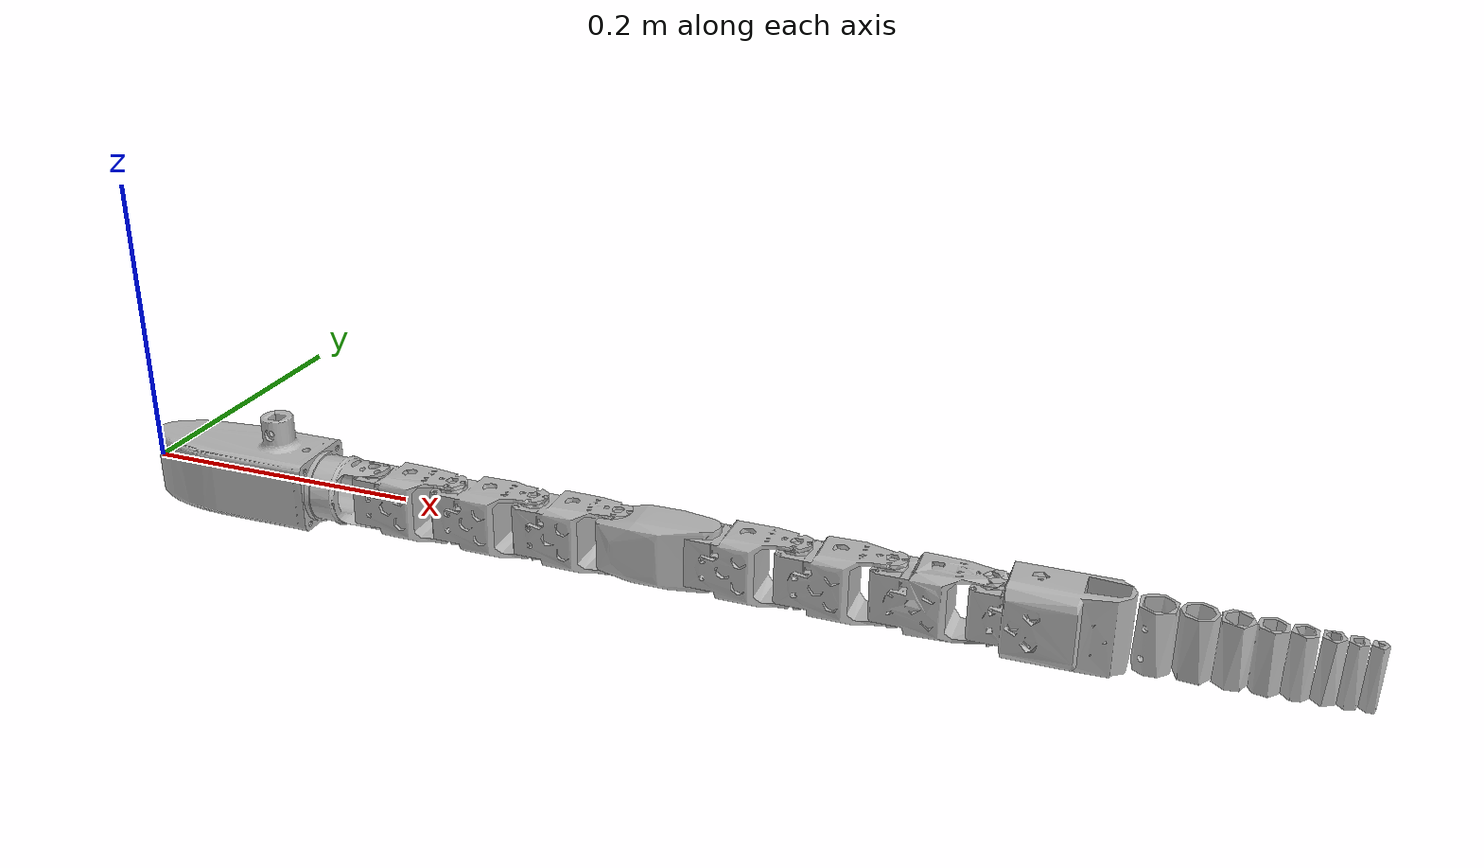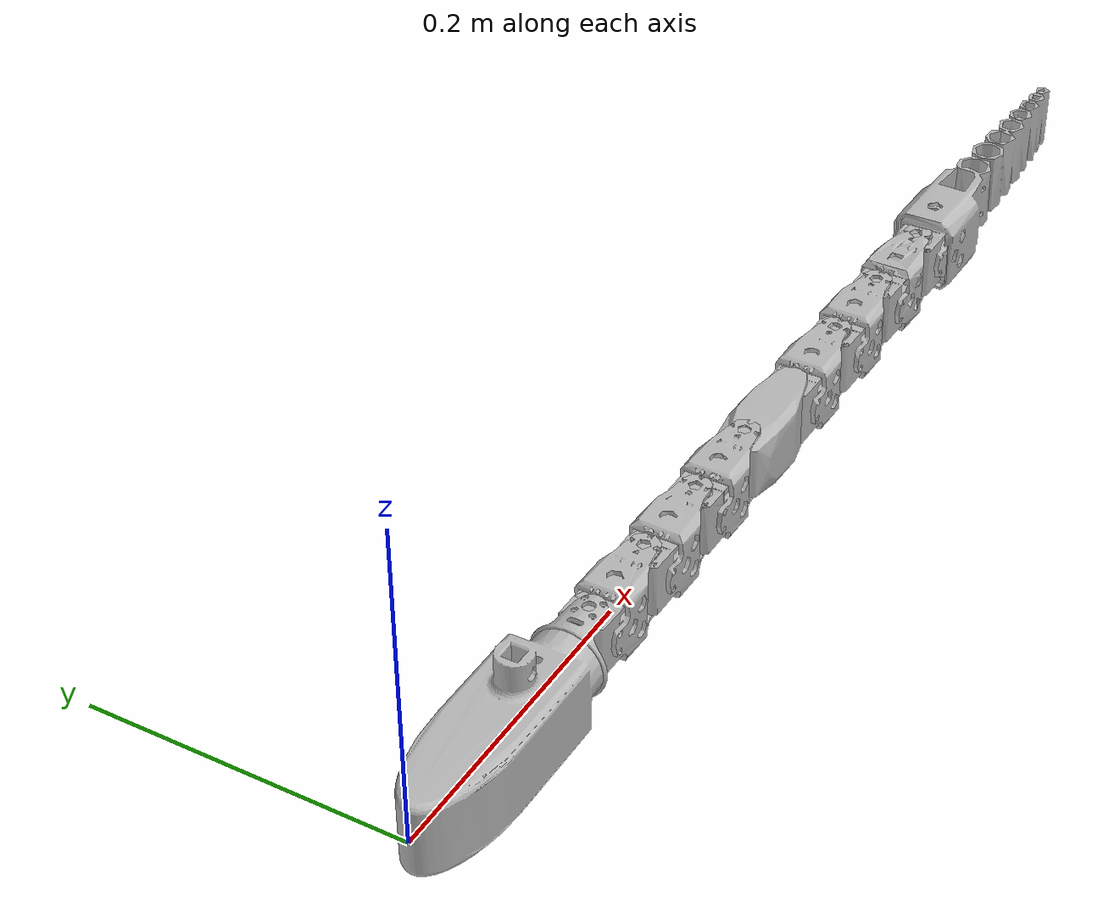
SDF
<?xml version="1.0" ?>
<sdf version="1.6">
	<world name="world">
		<model name="1guilla_watertight">
			<pose>0.0 0.0 0.0 0.0 0.0 0.0</pose>
			<link name="link0">
				<pose>0 0 0 0 0 0</pose>
				<inertial>
					<pose>0.089486 0.000183329 0.00273009 0 0 0</pose>
					<mass>0.121553</mass>
					<density>1000.0</density>
					<inertia>
						<ixx>7.56729e-05</ixx>
						<ixy>3.33775e-07</ixy>
						<ixz>1.97751e-06</ixz>
						<iyy>0.000291121</iyy>
						<iyz>1.8348e-07</iyz>
						<izz>0.000281833</izz>
					</inertia>
				</inertial>
				<collision name="link0_collision">
					<pose>0.0 0.0 0.0 0.0 0.0 0.0</pose>
					<geometry>
						<mesh>
							<uri>meshes/link0_collision.stl</uri>
							<scale>1.0 1.0 1.0</scale>
						</mesh>
					</geometry>
				</collision>
				<visual name="link0_visual">
					<pose>0.0 0.0 0.0 0.0 0.0 0.0</pose>
					<geometry>
						<mesh>
							<uri>meshes/link0.obj</uri>
							<scale>1.0 1.0 1.0</scale>
						</mesh>
					</geometry>
				</visual>
			</link>
			<link name="link1">
				<pose>0.17701 0 0 0 0 0</pose>
				<inertial>
					<pose>0.0164588 0.000161189 -0.000893398 0 0 0</pose>
					<mass>0.0600393</mass>
					<density>1000.0</density>
					<inertia>
						<ixx>1.33767e-05</ixx>
						<ixy>1.61739e-08</ixy>
						<ixz>-8.803e-08</ixz>
						<iyy>2.33635e-05</iyy>
						<iyz>4.15585e-09</iyz>
						<izz>1.97273e-05</izz>
					</inertia>
				</inertial>
				<collision name="link1_collision">
					<pose>0.0 0.0 0.0 0.0 0.0 0.0</pose>
					<geometry>
						<mesh>
							<uri>meshes/link1_collision.stl</uri>
							<scale>1.0 1.0 1.0</scale>
						</mesh>
					</geometry>
				</collision>
				<visual name="link1_visual">
					<pose>0.0 0.0 0.0 0.0 0.0 0.0</pose>
					<geometry>
						<mesh>
							<uri>meshes/link1.obj</uri>
							<scale>1.0 1.0 1.0</scale>
						</mesh>
					</geometry>
				</visual>
			</link>
			<link name="link2">
				<pose>0.23711 0 0 0 0 0</pose>
				<inertial>
					<pose>0.0165451 0.000141008 -0.00100087 0 0 0</pose>
					<mass>0.0600006</mass>
					<density>1000.0</density>
					<inertia>
						<ixx>1.33738e-05</ixx>
						<ixy>-3.1762e-08</ixy>
						<ixz>-1.48203e-07</ixz>
						<iyy>2.336e-05</iyy>
						<iyz>2.1843e-09</iyz>
						<izz>1.97172e-05</izz>
					</inertia>
				</inertial>
				<collision name="link2_collision">
					<pose>0.0 0.0 0.0 0.0 0.0 0.0</pose>
					<geometry>
						<mesh>
							<uri>meshes/link2_collision.stl</uri>
							<scale>1.0 1.0 1.0</scale>
						</mesh>
					</geometry>
				</collision>
				<visual name="link2_visual">
					<pose>0.0 0.0 0.0 0.0 0.0 0.0</pose>
					<geometry>
						<mesh>
							<uri>meshes/link2.obj</uri>
							<scale>1.0 1.0 1.0</scale>
						</mesh>
					</geometry>
				</visual>
			</link>
			<link name="link3">
				<pose>0.29711 0 0 0 0 0</pose>
				<inertial>
					<pose>0.016559 0.000217794 -0.000675147 0 0 0</pose>
					<mass>0.0599985</mass>
					<density>1000.0</density>
					<inertia>
						<ixx>1.33701e-05</ixx>
						<ixy>-3.14402e-08</ixy>
						<ixz>-1.36302e-07</ixz>
						<iyy>2.3337e-05</iyy>
						<iyz>6.68457e-10</iyz>
						<izz>1.97015e-05</izz>
					</inertia>
				</inertial>
				<collision name="link3_collision">
					<pose>0.0 0.0 0.0 0.0 0.0 0.0</pose>
					<geometry>
						<mesh>
							<uri>meshes/link3_collision.stl</uri>
							<scale>1.0 1.0 1.0</scale>
						</mesh>
					</geometry>
				</collision>
				<visual name="link3_visual">
					<pose>0.0 0.0 0.0 0.0 0.0 0.0</pose>
					<geometry>
						<mesh>
							<uri>meshes/link3.obj</uri>
							<scale>1.0 1.0 1.0</scale>
						</mesh>
					</geometry>
				</visual>
			</link>
			<link name="link4">
				<pose>0.35701 0 0 0 0 0</pose>
				<inertial>
					<pose>0.0165804 0.00016576 -0.00030783 0 0 0</pose>
					<mass>0.0600556</mass>
					<density>1000.0</density>
					<inertia>
						<ixx>1.33912e-05</ixx>
						<ixy>2.20838e-08</ixy>
						<ixz>-1.32859e-07</ixz>
						<iyy>2.33802e-05</iyy>
						<iyz>4.98553e-09</iyz>
						<izz>1.97338e-05</izz>
					</inertia>
				</inertial>
				<collision name="link4_collision">
					<pose>0.0 0.0 0.0 0.0 0.0 0.0</pose>
					<geometry>
						<mesh>
							<uri>meshes/link4_collision.stl</uri>
							<scale>1.0 1.0 1.0</scale>
						</mesh>
					</geometry>
				</collision>
				<visual name="link4_visual">
					<pose>0.0 0.0 0.0 0.0 0.0 0.0</pose>
					<geometry>
						<mesh>
							<uri>meshes/link4.obj</uri>
							<scale>1.0 1.0 1.0</scale>
						</mesh>
					</geometry>
				</visual>
			</link>
			<link name="link5">
				<pose>0.416911 0 0 0 0 0</pose>
				<inertial>
					<pose>0.0165887 5.09204e-05 8.91828e-05 0 0 0</pose>
					<mass>0.0599914</mass>
					<density>1000.0</density>
					<inertia>
						<ixx>1.33721e-05</ixx>
						<ixy>-1.16741e-08</ixy>
						<ixz>-1.45613e-07</ixz>
						<iyy>2.33392e-05</iyy>
						<iyz>-1.86967e-09</iyz>
						<izz>1.96925e-05</izz>
					</inertia>
				</inertial>
				<collision name="link5_collision">
					<pose>0.0 0.0 0.0 0.0 0.0 0.0</pose>
					<geometry>
						<mesh>
							<uri>meshes/link5_collision.stl</uri>
							<scale>1.0 1.0 1.0</scale>
						</mesh>
					</geometry>
				</collision>
				<visual name="link5_visual">
					<pose>0.0 0.0 0.0 0.0 0.0 0.0</pose>
					<geometry>
						<mesh>
							<uri>meshes/link5.obj</uri>
							<scale>1.0 1.0 1.0</scale>
						</mesh>
					</geometry>
				</visual>
			</link>
			<link name="link6">
				<pose>0.477111 0 0 0 0 0</pose>
				<inertial>
					<pose>0.0163977 -2.15328e-05 0.000430453 0 0 0</pose>
					<mass>0.0601311</mass>
					<density>1000.0</density>
					<inertia>
						<ixx>1.33976e-05</ixx>
						<ixy>-1.2878e-08</ixy>
						<ixz>-1.5007e-07</ixz>
						<iyy>2.34101e-05</iyy>
						<iyz>2.99392e-09</iyz>
						<izz>1.9769e-05</izz>
					</inertia>
				</inertial>
				<collision name="link6_collision">
					<pose>0.0 0.0 0.0 0.0 0.0 0.0</pose>
					<geometry>
						<mesh>
							<uri>meshes/link6_collision.stl</uri>
							<scale>1.0 1.0 1.0</scale>
						</mesh>
					</geometry>
				</collision>
				<visual name="link6_visual">
					<pose>0.0 0.0 0.0 0.0 0.0 0.0</pose>
					<geometry>
						<mesh>
							<uri>meshes/link6.obj</uri>
							<scale>1.0 1.0 1.0</scale>
						</mesh>
					</geometry>
				</visual>
			</link>
			<link name="link7">
				<pose>0.53711 0 0 0 0 0</pose>
				<inertial>
					<pose>0.0163454 9.07783e-05 0.000902113 0 0 0</pose>
					<mass>0.0599418</mass>
					<density>1000.0</density>
					<inertia>
						<ixx>1.33522e-05</ixx>
						<ixy>3.10381e-08</ixy>
						<ixz>-1.56284e-07</ixz>
						<iyy>2.33131e-05</iyy>
						<iyz>-3.23696e-09</iyz>
						<izz>1.96805e-05</izz>
					</inertia>
				</inertial>
				<collision name="link7_collision">
					<pose>0.0 0.0 0.0 0.0 0.0 0.0</pose>
					<geometry>
						<mesh>
							<uri>meshes/link7_collision.stl</uri>
							<scale>1.0 1.0 1.0</scale>
						</mesh>
					</geometry>
				</collision>
				<visual name="link7_visual">
					<pose>0.0 0.0 0.0 0.0 0.0 0.0</pose>
					<geometry>
						<mesh>
							<uri>meshes/link7.obj</uri>
							<scale>1.0 1.0 1.0</scale>
						</mesh>
					</geometry>
				</visual>
			</link>
			<link name="link8">
				<pose>0.59691 0 0 0 0 0</pose>
				<inertial>
					<pose>0.0590153 5.92122e-05 0.00210109 0 0 0</pose>
					<mass>0.125359</mass>
					<density>1000.0</density>
					<inertia>
						<ixx>3.44218e-05</ixx>
						<ixy>-2.45953e-06</ixy>
						<ixz>-1.98289e-06</ixz>
						<iyy>0.000460324</iyy>
						<iyz>2.49714e-08</iyz>
						<izz>0.000450205</izz>
					</inertia>
				</inertial>
				<collision name="link8_collision">
					<pose>0.0 0.0 0.0 0.0 0.0 0.0</pose>
					<geometry>
						<mesh>
							<uri>meshes/link8_collision.stl</uri>
							<scale>1.0 1.0 1.0</scale>
						</mesh>
					</geometry>
				</collision>
				<visual name="link8_visual">
					<pose>0.0 0.0 0.0 0.0 0.0 0.0</pose>
					<geometry>
						<mesh>
							<uri>meshes/link8.obj</uri>
							<scale>1.0 1.0 1.0</scale>
						</mesh>
					</geometry>
				</visual>
			</link>
			<joint name="joint_body_00" type="revolute">
				<parent>link0</parent>
				<child>link1</child>
				<pose>0 0 0 0 0 0</pose>
				<axis>
					<xyz>0.0 0.0 -1.0</xyz>
					<limit>
						<lower>-1.5708</lower>
						<upper>1.5708</upper>
					</limit>
				</axis>
			</joint>
			<joint name="joint_body_01" type="revolute">
				<parent>link1</parent>
				<child>link2</child>
				<pose>0 0 0 0 0 0</pose>
				<axis>
					<xyz>0.0 0.0 -1.0</xyz>
					<limit>
						<lower>-1.5708</lower>
						<upper>1.5708</upper>
					</limit>
				</axis>
			</joint>
			<joint name="joint_body_02" type="revolute">
				<parent>link2</parent>
				<child>link3</child>
				<pose>0 0 0 0 0 0</pose>
				<axis>
					<xyz>0.0 0.0 -1.0</xyz>
					<limit>
						<lower>-1.5708</lower>
						<upper>1.5708</upper>
					</limit>
				</axis>
			</joint>
			<joint name="joint_body_03" type="revolute">
				<parent>link3</parent>
				<child>link4</child>
				<pose>0 0 0 0 0 0</pose>
				<axis>
					<xyz>0.0 0.0 -1.0</xyz>
					<limit>
						<lower>-1.5708</lower>
						<upper>1.5708</upper>
					</limit>
				</axis>
			</joint>
			<joint name="joint_body_04" type="revolute">
				<parent>link4</parent>
				<child>link5</child>
				<pose>0 0 0 0 0 0</pose>
				<axis>
					<xyz>0.0 0.0 -1.0</xyz>
					<limit>
						<lower>-1.5708</lower>
						<upper>1.5708</upper>
					</limit>
				</axis>
			</joint>
			<joint name="joint_body_05" type="revolute">
				<parent>link5</parent>
				<child>link6</child>
				<pose>0 0 0 0 0 0</pose>
				<axis>
					<xyz>0.0 0.0 -1.0</xyz>
					<limit>
						<lower>-1.5708</lower>
						<upper>1.5708</upper>
					</limit>
				</axis>
			</joint>
			<joint name="joint_body_06" type="revolute">
				<parent>link6</parent>
				<child>link7</child>
				<pose>0 0 0 0 0 0</pose>
				<axis>
					<xyz>0.0 0.0 -1.0</xyz>
					<limit>
						<lower>-1.5708</lower>
						<upper>1.5708</upper>
					</limit>
				</axis>
			</joint>
			<joint name="joint_body_07" type="revolute">
				<parent>link7</parent>
				<child>link8</child>
				<pose>0 0 0 0 0 0</pose>
				<axis>
					<xyz>0.0 0.0 -1.0</xyz>
					<limit>
						<lower>-1.5708</lower>
						<upper>1.5708</upper>
					</limit>
				</axis>
			</joint>
			<linkend name="link8">
				<pose>0.8133 0 0</pose>
			</linkend>
		</model>
	</world>
</sdf>
